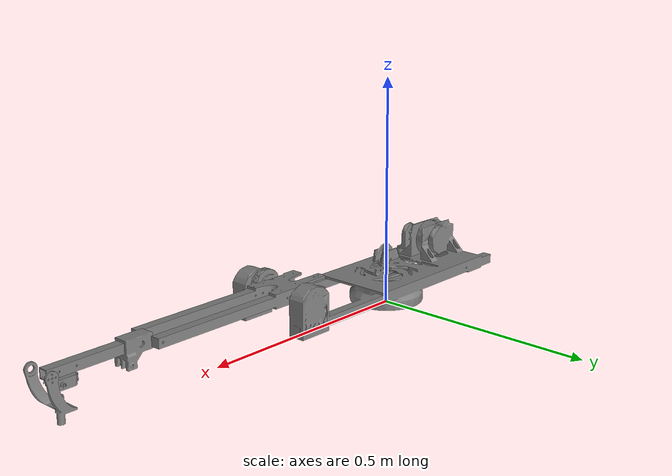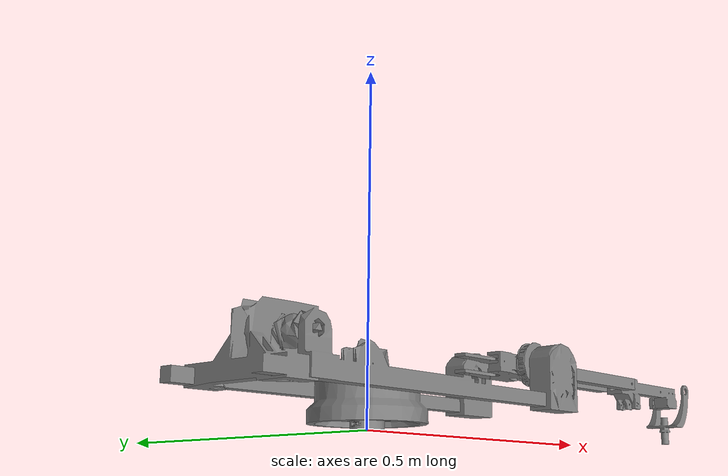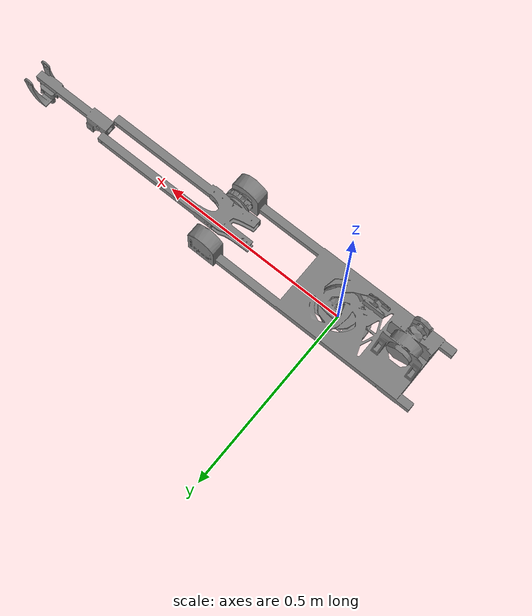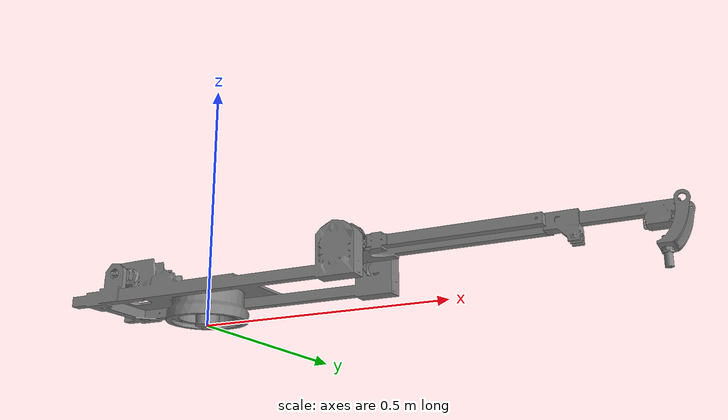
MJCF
<mujoco model="arm">

  <compiler angle="radian" coordinate="local"/>
  <option gravity="0 0 -9.81" timestep="0.002"/>

  <default>
    <joint damping="0.1" frictionloss="0.01"/>
    <geom type="mesh" contype="1" conaffinity="1"/>
  </default>

  <asset>
    <mesh name="base_link" file="base_link.STL"/>
    <mesh name="link1" file="link1.STL"/>
    <mesh name="link2" file="link2.STL"/>
    <mesh name="link3" file="link3.STL"/>
    <mesh name="link4" file="link4.STL"/>
  </asset>

  <worldbody>

    <body name="base_link" pos="0 0 0">

      <geom mesh="base_link"/>

      <body name="link1" pos="-0.000032465 0.000010134 0.066">

        <joint name="joint1" type="hinge" axis="0 0 -1"/>

        <geom mesh="link1"/>

        <body name="link2" pos="0.3275 -0.0335 0.0485" euler="1.5708 0 0">

          <joint name="joint2" type="hinge" axis="0 0 1"/>

          <geom mesh="link2"/>

          <body name="link3" pos="0.3695 0 -0.044">

            <joint name="joint3" type="hinge" axis="0 0 1"/>

            <geom mesh="link3"/>

            <body name="link4" pos="0.2 0.004 -0.026">

              <joint name="joint4" type="hinge" axis="0 0 1"/>

              <geom mesh="link4"/>

            </body>

          </body>

        </body>

      </body>

    </body>

  </worldbody>

  <actuator>

    <motor name="motor1" joint="joint1" ctrlrange="-3.14 3.14" gear="100"/>
    <motor name="motor2" joint="joint2" ctrlrange="-3.14 3.14" gear="100"/>
    <motor name="motor3" joint="joint3" ctrlrange="-3.14 3.14" gear="100"/>
    <motor name="motor4" joint="joint4" ctrlrange="-3.14 3.14" gear="100"/>

  </actuator>

</mujoco>
